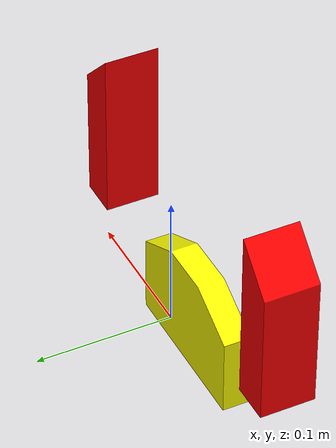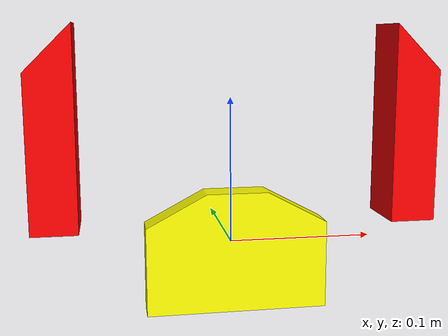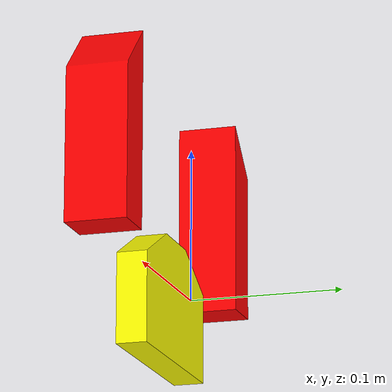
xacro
<?xml version="1.0"?>
<robot xmlns:xacro="http://www.ros.org/wiki/xacro">

    <xacro:arg name="link1_x" default="0.076"/>
    <xacro:arg name="link1_y" default="0"/>
    <xacro:arg name="link1_z" default="0.076"/>
    <xacro:arg name="link1_joint_x" default="0.04"/>
    <xacro:arg name="link1_joint_z" default="0.008"/>

    <link name="gripper_link_base">
        <inertial>
            <mass value="0.05"/>
            <origin rpy="1.571 0 0" xyz="0 0 0" />
            <inertia ixx="0.02216" ixy="5.8e-06" ixz="6.2e-06" iyy="0.02"
                iyz="-5.3e-05"
                izz="0.02"/>
        </inertial>
        <collision>
            <origin rpy="1.571 0 0" xyz="0 0 0" />
            <geometry>
                <mesh filename="file:///$(find arm_03)/description/meshes/gripA/gripA_0.stl"
                    scale="0.004 0.004 0.004" />
            </geometry>
        </collision>
        <visual>
            <origin rpy="1.571 0 0" xyz="0 0 0" />
            <geometry>
                <mesh filename="file:///$(find arm_03)/description/meshes/gripA/gripA_0.stl"
                    scale="0.004 0.004 0.004" />
            </geometry>
            <material name="yellow">
                <color rgba="1 1 0 1"/>
            </material>
        </visual>
    </link>

    <link name="gripper_link_left_1">
        <contact>
            <plugin name="gripper_link_left_1_contact_plugin" filename="libgazebo_ros_contact.so"/>
        </contact>
        <inertial>
            <mass value="0.05"/>
            <origin xyz="4e-06   -0.001     0.082"/>
            <inertia ixx="3.9" ixy="-0.11" ixz="-8e-9" iyy="0.6" iyz="7e-9" izz="3.7"/>
        </inertial>
        <collision>
            <origin rpy="1.571 0 0" xyz="-$(arg link1_x) $(arg link1_y) $(arg link1_z)" />
            <geometry>
                <mesh filename="file:///$(find arm_03)/description/meshes/gripA/gripA_L_1.stl"
                    scale="0.004 0.004 0.004" />
                <!-- cylinder radius="0.08" length="0.2"/ -->
            </geometry>
        </collision>
        <visual>
            <origin rpy="1.571 0 0" xyz="-$(arg link1_x) $(arg link1_y) $(arg link1_z)" />
            <!-- origin rpy="1.571 0 0" xyz="-0.036 0 0.038" /-->
            <geometry>
                <mesh filename="file:///$(find arm_03)/description/meshes/gripA/gripA_L_1.stl"
                    scale="0.004 0.004 0.004" />
            </geometry>
            <material name="red">
                <color rgba="1 0 0 1"/>
            </material>
        </visual>

        <surface>
            <friction>
                <ode>
                    <mu>1.0</mu>
                    <mu2>1.0</mu2>
                </ode>
            </friction>
            <contact>
                <ode>
                    <kp>100</kp>
                    <kd>100</kd>
                    <min_depth>0.005</min_depth>
                    <max_vel>0.0</max_vel>
                </ode>
            </contact>
        </surface>

    </link>

    <joint name="gripper_joint_left_1" type="prismatic">
        <parent link="gripper_link_base" />
        <child link="gripper_link_left_1" />
        <origin rpy="0 0 0" xyz="-$(arg link1_joint_x) $(arg link1_y) $(arg link1_joint_z)" />
        <!-- origin rpy="0 0 0" xyz="-0.036 0 -0.04" / -->
        <axis xyz="1 0 0" />
        <limit effort="100" lower="-0.04" upper="0.1" velocity="0.05"/>
        <dynamics damping="60.0" friction="4.0" />
    </joint>

    <link name="gripper_link_right_1">
        <contact>
            <plugin name="gripper_link_right_1_contact_plugin" filename="libgazebo_ros_contact.so"/>
        </contact>
        <inertial>
            <mass value="0.05"/>
            <origin xyz="4e-06   -0.001     0.082"/>
            <inertia ixx="3.9" ixy="0.1" ixz="8e-9" iyy="0.6" iyz="7e-9" izz="3.7"/>
        </inertial>
        <collision>
            <origin rpy="1.571 0 0" xyz="$(arg link1_x) $(arg link1_y) $(arg link1_z)" />
            <geometry>
                <!-- cylinder radius="0.08" length="0.2"/ -->
                <mesh filename="file:///$(find arm_03)/description/meshes/gripA/gripA_R_1.stl"
                    scale="0.004 0.004 0.004" />
            </geometry>
        </collision>
        <visual>
            <origin rpy="1.571 0 0" xyz="$(arg link1_x) $(arg link1_y) $(arg link1_z)" />
            <!-- origin rpy="1.571 0 0" xyz="-0.036 0 0.038" /-->
            <geometry>
                <mesh filename="file:///$(find arm_03)/description/meshes/gripA/gripA_R_1.stl"
                    scale="0.004 0.004 0.004" />
            </geometry>
            <material name="red">
                <color rgba="1 0 0 1"/>
            </material>
        </visual>

        <surface>
            <friction>
                <ode>
                    <mu>1.0</mu>
                    <mu2>1.0</mu2>
                </ode>
            </friction>
            <contact>
                <ode>
                    <kp>100</kp>
                    <kd>100</kd>
                    <min_depth>0.005</min_depth>
                    <max_vel>0.0</max_vel>
                </ode>
            </contact>
        </surface>

    </link>

    <joint name="gripper_joint_right_1" type="prismatic">
        <parent link="gripper_link_base" />
        <child link="gripper_link_right_1" />
        <origin rpy="0 0 0" xyz="$(arg link1_joint_x) $(arg link1_y) $(arg link1_joint_z)" />
        <!-- origin rpy="0 0 0" xyz="-0.036 0 -0.04" / -->
        <axis xyz="1 0 0" />
        <limit effort="100" lower="-0.1" upper="0.04" velocity="0.05"/>
        <dynamics damping="60.0" friction="4.0" />

        <!-- Mimic the movement of gripper_joint_left_1 -->
        <!-- mimic joint="gripper_joint_left_1" multiplier="-1" offset="0" / -->

    </joint>

    <!-- Gazebo colors -->

    <gazebo reference="gripper_link_base">
        <material>Gazebo/Yellow</material>
    </gazebo>
    <gazebo reference="gripper_link_left_1">
        <material>Gazebo/Red</material>
    </gazebo>
    <gazebo reference="gripper_link_right_1">
        <material>Gazebo/Blue</material>
    </gazebo>

</robot>
